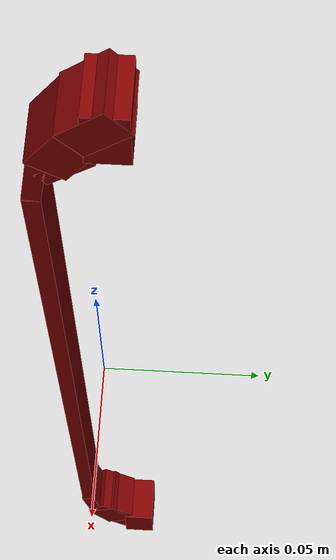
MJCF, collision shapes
<?xml version='1.0' encoding='UTF-8'?>
<mujoco model="model">
  <option timestep="0.002" gravity="0.0 0.0 -9.81"/>
  <compiler angle="radian"/>
  <asset>
    <mesh file="visuals/CabinetHandle020.obj" name="CabinetHandle020_vis"/>
    <texture file="visuals/T_BC001.png" name="tex" type="2d"/>
    <material name="mat" rgba="1 1 1 1.0" texture="tex" shininess="0.5" specular="0.3103448502657381"/>
  </asset>
  <default>
    <default class="visual">
      <geom conaffinity="0" contype="0" group="1" type="mesh"/>
    </default>
    <default class="collision">
      <geom group="0" rgba="0.5 0 0 0.5" density="1.0" solref="0.004 1" solimp="0.998 0.998 0.001"/>
    </default>
    <default class="spawn">
      <geom group="0" rgba="1 1 1 0.5" contype="0" conaffinity="0"/>
      <site group="0" rgba="1 1 1 0.5"/>
    </default>
    <default class="region">
      <geom group="1" conaffinity="0" contype="0" rgba="0 1 0 0" mass="0"/>
    </default>
  </default>
  <worldbody>
    <body>
      <body name="object">
        <geom mesh="CabinetHandle020_vis" type="mesh" solimp="0.998 0.998 0.001" solref="0.001 1" friction="0.95 0.3 0.1" class="visual" material="mat"/>
        <geom type="box" pos="2.9699571314267814e-05 -0.01141868531703949 0.0003690794110298157" size="0.007665668614208698 0.0024438342079520226 0.11673655360937119" quat="1.0 0.0 0.0 0.0" class="collision"/>
        <geom type="box" pos="2.9699571314267814e-05 -0.010137566365301609 0.1251724809408188" size="0.007665668614208698 0.0024438342079520226 0.007577591110020876" quat="0.9965392351150513 -0.08312389254570007 -1.8457213534501953e-17 -3.8434155272145334e-24" class="collision"/>
        <geom type="box" pos="-3.1486546504311264e-05 -0.0024454386439174414 0.13754677772521973" size="0.008207958191633224 0.005768961738795042 0.007577589713037014" quat="0.954327404499054 -0.2987627685070038 -6.633868075178094e-17 4.483387219614584e-24" class="collision"/>
        <geom type="box" pos="6.267290154937655e-05 0.005477930884808302 0.14771072566509247" size="0.00850443821400404 0.005000699777156115 0.007577590644359589" quat="0.9044033288955688 -0.4266785979270935 -9.474170717646736e-17 6.0350813533497456e-24" class="collision"/>
        <geom type="box" pos="-4.565922426991165e-05 0.008170992136001587 0.1452527791261673" size="0.008433991111814976 0.00561839435249567 0.00893394649028778" quat="1.0 0.0 0.0 0.0" class="collision"/>
        <geom type="box" pos="2.9699571314267814e-05 -0.002254330087453127 0.13155312836170197" size="0.007665668614208698 0.0024438342079520226 0.007577591110020876" quat="0.8987127542495728 -0.4385378360748291 -9.737496055591357e-17 -1.682071699895935e-23" class="collision"/>
        <geom type="box" pos="2.9699571314267814e-05 -0.010412762872874737 -0.12396690249443054" size="0.007665668614208698 0.0024438342079520226 0.007577591110020876" quat="0.9959761500358582 0.08961895108222961 1.9899409549933057e-17 -2.96367469026844e-24" class="collision"/>
        <geom type="box" pos="5.778579361503944e-05 -0.0032710283994674683 -0.13587871193885803" size="0.008103731088340282 0.005768961738795042 0.007577590178698301" quat="0.2573588192462921 -0.9663159251213074 -2.1456523782632683e-16 6.282866113553739e-24" class="collision"/>
        <geom type="box" pos="2.9699571314267814e-05 0.004170747008174658 -0.14621691405773163" size="0.007665668614208698 0.005000699777156115 0.007577590178698301" quat="0.4027372896671295 -0.9153156280517578 -2.0324088377756967e-16 7.731655708785535e-24" class="collision"/>
        <geom type="box" pos="8.320379129145294e-05 0.008170992136001587 -0.1454082727432251" size="0.008290779776871204 0.00561839435249567 0.00893394649028778" quat="1.0 0.0 0.0 0.0" class="collision"/>
        <geom type="box" pos="-2.9531427571782842e-05 -0.0018415353260934353 -0.13107088208198547" size="0.007926031947135925 0.0024438342079520226 0.007577591110020876" quat="0.42053529620170593 -0.9072761535644531 -2.0145580154590063e-16 9.049574857562976e-24" class="collision"/>
        <geom class="region" name="reg_main" type="box" pos="2.3283064365386963e-10 0.0 0.0" size="0.009458646945655347 0.014790149241685868 0.1557870635986328"/>
      </body>
    </body>
  </worldbody>
  <actuator/>
</mujoco>
